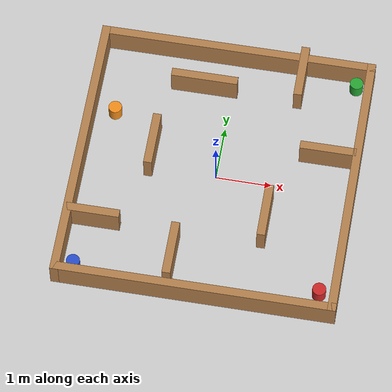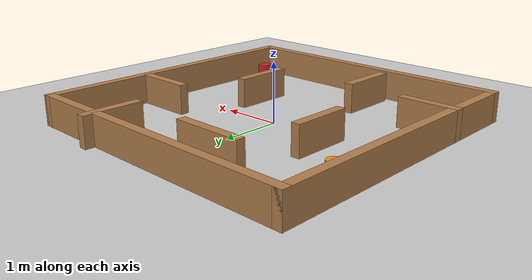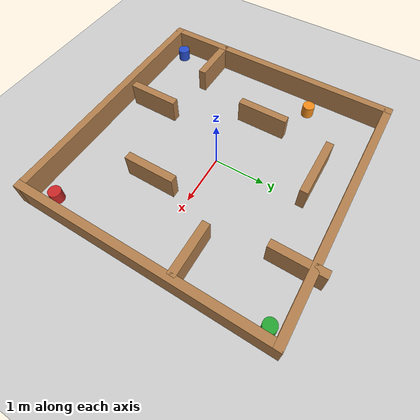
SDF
<sdf version="1.7">
 <world name="default">
  <model name="ground_plane">
   <static>1</static>
   <link name="link">
    <collision name="collision">
     <geometry><plane><normal>0 0 1</normal><size>100 100</size></plane></geometry>
     <surface><friction><ode><mu>100</mu><mu2>50</mu2></ode></friction></surface>
    </collision>
    <visual name="visual">
     <cast_shadows>0</cast_shadows>
     <geometry><plane><normal>0 0 1</normal><size>100 100</size></plane></geometry>
     <material>
      <script><uri>file://media/materials/scripts/gazebo.material</uri><name>Gazebo/Grey</name></script>
     </material>
    </visual>
   </link>
  </model>
  <light name="sun" type="directional">
   <pose>0 0 10 0 -0 0</pose>
   <diffuse>0.8 0.8 0.8 1</diffuse>
   <specular>0.2 0.2 0.2 1</specular>
   <attenuation>
    <range>1000</range>
    <constant>0.9</constant>
    <linear>0.01</linear>
    <quadratic>0.001</quadratic>
   </attenuation>
   <direction>-0.5 0.1 -0.9</direction>
   <spot><inner_angle>0</inner_angle><outer_angle>0</outer_angle><falloff>0</falloff></spot>
  </light>
  <scene><shadows>0</shadows><ambient>0.4 0.4 0.4 1</ambient><background>0.7 0.7 0.7 1</background></scene>
  <physics type="ode">
   <real_time_update_rate>1000</real_time_update_rate>
   <max_step_size>0.001</max_step_size>
   <real_time_factor>1</real_time_factor>
   <ode>
    <solver>
     <type>quick</type>
     <iters>150</iters>
     <precon_iters>0</precon_iters>
     <sor>1.4</sor>
     <use_dynamic_moi_rescaling>1</use_dynamic_moi_rescaling>
    </solver>
    <constraints>
     <cfm>1e-05</cfm>
     <erp>0.2</erp>
     <contact_max_correcting_vel>2000</contact_max_correcting_vel>
     <contact_surface_layer>0.01</contact_surface_layer>
    </constraints>
   </ode>
  </physics>
  <model name="turtlebot3_dqn_world">
   <static>1</static>
   <frame name="turtlebot3_square::__model__" attached_to="turtlebot3_square::Wall_1">
    <pose relative_to="__model__">0 0 0 0 -0 0</pose>
   </frame>
   <link name="turtlebot3_square::Wall_1">
    <collision name="Wall_1_Collision">
     <geometry><box><size>5 0.15 0.5</size></box></geometry>
     <pose>0 0 0.25 0 -0 0</pose>
    </collision>
    <visual name="Wall_1_Visual">
     <pose>0 0 0.25 0 -0 0</pose>
     <geometry><box><size>5 0.15 0.5</size></box></geometry>
     <material>
      <script><uri>file://media/materials/scripts/gazebo.material</uri><name>Gazebo/Wood</name></script>
      <ambient>1 1 1 1</ambient>
     </material>
    </visual>
    <pose relative_to="turtlebot3_square::__model__">-2.425 0 0 0 -0 1.5708</pose>
   </link>
   <link name="turtlebot3_square::Wall_2">
    <collision name="Wall_2_Collision">
     <geometry><box><size>5 0.15 0.5</size></box></geometry>
     <pose>0 0 0.25 0 -0 0</pose>
    </collision>
    <visual name="Wall_2_Visual">
     <pose>0 0 0.25 0 -0 0</pose>
     <geometry><box><size>5 0.15 0.5</size></box></geometry>
     <material>
      <script><uri>file://media/materials/scripts/gazebo.material</uri><name>Gazebo/Wood</name></script>
      <ambient>1 1 1 1</ambient>
     </material>
    </visual>
    <pose relative_to="turtlebot3_square::__model__">0 2.425 0 0 -0 0</pose>
   </link>
   <link name="turtlebot3_square::Wall_3">
    <collision name="Wall_3_Collision">
     <geometry><box><size>5 0.15 0.5</size></box></geometry>
     <pose>0 0 0.25 0 -0 0</pose>
    </collision>
    <visual name="Wall_3_Visual">
     <pose>0 0 0.25 0 -0 0</pose>
     <geometry><box><size>5 0.15 0.5</size></box></geometry>
     <material>
      <script><uri>file://media/materials/scripts/gazebo.material</uri><name>Gazebo/Wood</name></script>
      <ambient>1 1 1 1</ambient>
     </material>
    </visual>
    <pose relative_to="turtlebot3_square::__model__">2.425 0 0 0 0 -1.5708</pose>
   </link>
   <link name="turtlebot3_square::Wall_4">
    <collision name="Wall_4_Collision">
     <geometry><box><size>5 0.15 0.5</size></box></geometry>
     <pose>0 0 0.25 0 -0 0</pose>
    </collision>
    <visual name="Wall_4_Visual">
     <pose>0 0 0.25 0 -0 0</pose>
     <geometry><box><size>5 0.15 0.5</size></box></geometry>
     <material>
      <script><uri>file://media/materials/scripts/gazebo.material</uri><name>Gazebo/Wood</name></script>
      <ambient>1 1 1 1</ambient>
     </material>
    </visual>
    <pose relative_to="turtlebot3_square::__model__">0 -2.425 0 0 -0 3.14159</pose>
   </link>
   <static>1</static>
  </model>
  <model name="inner_walls">
   <pose>0 0.25 0 0 -0 0</pose>
   <link name="inner_wall_1">
    <collision name="inner_wall_1_collision">
     <geometry><box><size>1 0.15 0.5</size></box></geometry>
     <pose>0 0 0.25 0 -0 0</pose>
    </collision>
    <visual name="inner_wall_visual">
     <pose>0 0 0.25 0 -0 0</pose>
     <geometry><box><size>1 0.15 0.5</size></box></geometry>
     <material>
      <script><uri>file://media/materials/scripts/gazebo.material</uri><name>Gazebo/Wood</name></script>
      <ambient>1 1 1 1</ambient>
     </material>
    </visual>
    <pose>-2 -1.5 0 0 -0 0</pose>
   </link>
   <link name="inner_wall_2">
    <collision name="inner_wall_2_collision">
     <geometry><box><size>1 0.15 0.5</size></box></geometry>
     <pose>0 0 0.25 0 -0 0</pose>
    </collision>
    <visual name="inner_wall_2_visual">
     <pose>0 0 0.25 0 -0 0</pose>
     <geometry><box><size>1 0.15 0.5</size></box></geometry>
     <material>
      <script><uri>file://media/materials/scripts/gazebo.material</uri><name>Gazebo/Wood</name></script>
      <ambient>1 1 1 1</ambient>
     </material>
    </visual>
    <pose>-0.5 -2 0 0 0 -1.5708</pose>
   </link>
   <link name="inner_wall_3">
    <collision name="inner_wall_3_collision">
     <geometry><box><size>1 0.15 0.5</size></box></geometry>
     <pose>0 0 0.25 0 -0 0</pose>
    </collision>
    <visual name="inner_wall_3_visual">
     <pose>0 0 0.25 0 -0 0</pose>
     <geometry><box><size>1 0.15 0.5</size></box></geometry>
     <material>
      <script><uri>file://media/materials/scripts/gazebo.material</uri><name>Gazebo/Wood</name></script>
      <ambient>1 1 1 1</ambient>
     </material>
    </visual>
    <pose>1 -1 0 0 -0 1.5708</pose>
   </link>
   <link name="inner_wall_4">
    <collision name="inner_wall_4_collision">
     <geometry><box><size>1 0.15 0.5</size></box></geometry>
     <pose>0 0 0.25 0 -0 0</pose>
    </collision>
    <visual name="inner_wall_4_visual">
     <pose>0 0 0.25 0 -0 0</pose>
     <geometry><box><size>1 0.15 0.5</size></box></geometry>
     <material>
      <script><uri>file://media/materials/scripts/gazebo.material</uri><name>Gazebo/Wood</name></script>
      <ambient>1 1 1 1</ambient>
     </material>
    </visual>
    <pose>1.2 1.9 0 0 0 -1.5708</pose>
   </link>
   <link name="inner_wall_5">
    <collision name="inner_wall_5_collision">
     <geometry><box><size>1 0.15 0.5</size></box></geometry>
     <pose>0 0 0.25 0 -0 0</pose>
    </collision>
    <visual name="inner_wall_5_visual">
     <pose>0 0 0.25 0 -0 0</pose>
     <geometry><box><size>1 0.15 0.5</size></box></geometry>
     <material>
      <script><uri>file://media/materials/scripts/gazebo.material</uri><name>Gazebo/Wood</name></script>
      <ambient>1 1 1 1</ambient>
     </material>
    </visual>
    <pose>1.9 0.4 0 0 -0 0</pose>
   </link>
   <link name="inner_wall_6">
    <collision name="inner_wall_6_collision">
     <geometry><box><size>1.2 0.15 0.5</size></box></geometry>
     <pose>0 0 0.25 0 -0 0</pose>
    </collision>
    <visual name="inner_wall_6_visual">
     <pose>0 0 0.25 0 -0 0</pose>
     <geometry><box><size>1.2 0.15 0.5</size></box></geometry>
     <material>
      <script><uri>file://media/materials/scripts/gazebo.material</uri><name>Gazebo/Wood</name></script>
      <ambient>1 1 1 1</ambient>
     </material>
    </visual>
    <pose>-0.5 1.5 0 0 -0 0</pose>
   </link>
   <link name="inner_wall_7">
    <collision name="inner_wall_7_collision">
     <geometry><box><size>1 0.15 0.5</size></box></geometry>
     <pose>0 0 0.25 0 -0 0</pose>
    </collision>
    <visual name="inner_wall_7_visual">
     <pose>0 0 0.25 0 -0 0</pose>
     <geometry><box><size>1 0.15 0.5</size></box></geometry>
     <material>
      <script><uri>file://media/materials/scripts/gazebo.material</uri><name>Gazebo/Wood</name></script>
      <ambient>1 1 1 1</ambient>
     </material>
    </visual>
    <pose>-1.2 0.092 0 0 0 -1.5708</pose>
   </link>
   <link name="inner_wall_8">
    <collision name="inner_wall_8_collision">
     <geometry><box><size>1 0.15 0.5</size></box></geometry>
     <pose>0 0 0.25 0 -0 0</pose>
    </collision>
    <visual name="inner_wall_8_visual">
     <pose>0 0 0.25 0 -0 0</pose>
     <geometry><box><size>1 0.15 0.5</size></box></geometry>
     <material>
      <script><uri>file://media/materials/scripts/gazebo.material</uri><name>Gazebo/Wood</name></script>
      <ambient>1 1 1 1</ambient>
     </material>
    </visual>
    <pose>-1.2 0.092 0 0 0 -1.5708</pose>
   </link>
   <static>1</static>
  </model>
  <model name="turtlebot3_dqn_obstacle1">
   <pose>0.15 -4.0 0.125 -0 -0 -0</pose>
   <plugin name="obstacle1" filename="libobstacle1.so"/>
   <frame name="obstacle1::__model__" attached_to="obstacle1::link">
    <pose relative_to="__model__">2 2 0 0 -0 0</pose>
   </frame>
   <link name="obstacle1::link">
    <collision name="collision">
     <geometry><cylinder><radius>0.12</radius><length>0.25</length></cylinder></geometry>
    </collision>
    <visual name="visual">
     <geometry><cylinder><radius>0.12</radius><length>0.25</length></cylinder></geometry>
     <material>
      <script><uri>file://media/materials/scripts/gazebo.material</uri><name>Gazebo/Red</name></script>
     </material>
    </visual>
    <pose relative_to="obstacle1::__model__">0 0 0 0 -0 0</pose>
    <inertial>
     <inertia><ixx>1</ixx><ixy>0</ixy><ixz>0</ixz><iyy>1</iyy><iyz>0</iyz><izz>1</izz></inertia>
     <mass>1</mass>
    </inertial>
   </link>
  </model>
  <model name="turtlebot3_dqn_obstacle2">
   <pose>4.2 4.2 0.125 -0 -0 -0</pose>
   <plugin name="obstacle2" filename="libobstacle2.so"/>
   <frame name="obstacle2::__model__" attached_to="obstacle2::link">
    <pose relative_to="__model__">-2 -2 0 0 -0 0</pose>
   </frame>
   <link name="obstacle2::link">
    <collision name="collision">
     <geometry><cylinder><radius>0.12</radius><length>0.25</length></cylinder></geometry>
    </collision>
    <visual name="visual">
     <geometry><cylinder><radius>0.12</radius><length>0.25</length></cylinder></geometry>
     <material>
      <script><uri>file://media/materials/scripts/gazebo.material</uri><name>Gazebo/Green</name></script>
     </material>
    </visual>
    <pose relative_to="obstacle2::__model__">0 0 0 0 -0 0</pose>
    <inertial>
     <inertia><ixx>1</ixx><ixy>0</ixy><ixz>0</ixz><iyy>1</iyy><iyz>0</iyz><izz>1</izz></inertia>
     <mass>1</mass>
    </inertial>
   </link>
  </model>
  <gravity>0 0 -9.8</gravity>
  <magnetic_field>6e-06 2.3e-05 -4.2e-05</magnetic_field>
  <atmosphere type="adiabatic"/>
  <audio><device>default</device></audio>
  <spherical_coordinates>
   <surface_model>EARTH_WGS84</surface_model>
   <latitude_deg>0</latitude_deg>
   <longitude_deg>0</longitude_deg>
   <elevation>0</elevation>
   <heading_deg>0</heading_deg>
  </spherical_coordinates>
  <model name="turtlebot3_dqn_obstacle2_clone">
   <plugin name="obstacle2" filename="libobstacle2.so"/>
   <frame name="obstacle2::__model__" attached_to="obstacle2::link">
    <pose relative_to="__model__">-2 -2 0 0 -0 0</pose>
   </frame>
   <link name="obstacle2::link">
    <collision name="collision">
     <geometry><cylinder><radius>0.12</radius><length>0.25</length></cylinder></geometry>
    </collision>
    <visual name="visual">
     <geometry><cylinder><radius>0.12</radius><length>0.25</length></cylinder></geometry>
     <material>
      <script><uri>file://media/materials/scripts/gazebo.material</uri><name>Gazebo/Blue</name></script>
     </material>
    </visual>
    <pose relative_to="obstacle2::__model__">0 0 0 0 -0 0</pose>
    <inertial>
     <inertia><ixx>1</ixx><ixy>0</ixy><ixz>0</ixz><iyy>1</iyy><iyz>0</iyz><izz>1</izz></inertia>
     <mass>1</mass>
    </inertial>
   </link>
   <pose>-0.16 -0.16 0.124991 0 -0 0</pose>
  </model>
  <model name="turtlebot3_dqn_obstacle2_clone_0">
   <plugin name="obstacle2" filename="libobstacle2.so"/>
   <frame name="obstacle2::__model__" attached_to="obstacle2::link">
    <pose relative_to="__model__">-2 -2 0 0 -0 0</pose>
   </frame>
   <link name="obstacle2::link">
    <collision name="collision">
     <geometry><cylinder><radius>0.12</radius><length>0.25</length></cylinder></geometry>
    </collision>
    <visual name="visual">
     <geometry><cylinder><radius>0.12</radius><length>0.25</length></cylinder></geometry>
     <material>
      <script><uri>file://media/materials/scripts/gazebo.material</uri><name>Gazebo/Orange</name></script>
     </material>
    </visual>
    <pose relative_to="obstacle2::__model__">0 0 0 0 -0 0</pose>
    <inertial>
     <inertia><ixx>1</ixx><ixy>0</ixy><ixz>0</ixz><iyy>1</iyy><iyz>0</iyz><izz>1</izz></inertia>
     <mass>1</mass>
    </inertial>
   </link>
   <pose>-0.0 3.0 0.124999 -0 -0 -0</pose>
  </model>
 </world>
</sdf>
